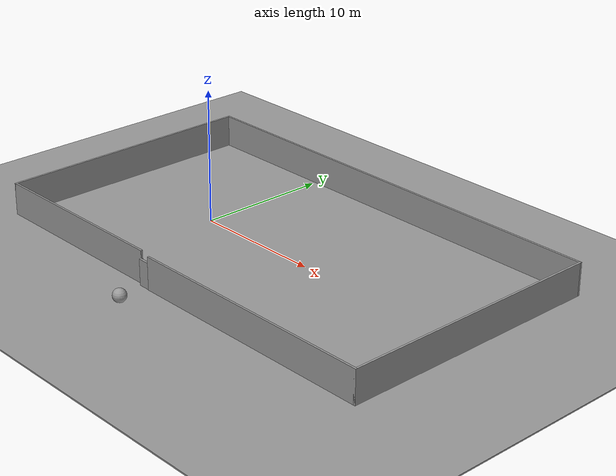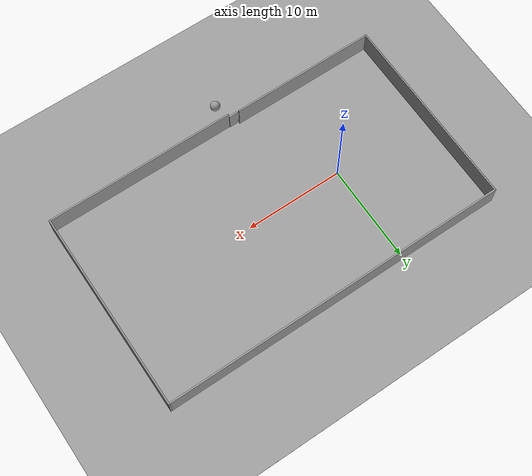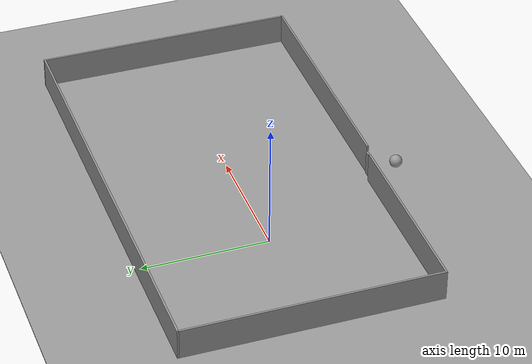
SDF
<sdf version="1.6">
 <world name="default">
  <light name="sun" type="directional">
   <pose>0 0 10 0 -0 0</pose>
   <diffuse>0.8 0.8 0.8 1</diffuse>
   <specular>0.2 0.2 0.2 1</specular>
   <attenuation>
    <range>1000</range>
    <constant>0.9</constant>
    <linear>0.01</linear>
    <quadratic>0.001</quadratic>
   </attenuation>
   <direction>-0.5 0.1 -0.9</direction>
  </light>
  <model name="ground_plane">
   <static>1</static>
   <link name="link">
    <collision name="collision">
     <geometry><plane><normal>0 0 1</normal><size>100 100</size></plane></geometry>
     <surface>
      <contact><collide_bitmask>65535</collide_bitmask></contact>
      <friction><ode><mu>100</mu><mu2>50</mu2></ode></friction>
     </surface>
    </collision>
    <visual name="visual">
     <cast_shadows>0</cast_shadows>
     <geometry><plane><normal>0 0 1</normal><size>100 100</size></plane></geometry>
     <material>
      <script><uri>file://media/materials/scripts/gazebo.material</uri><name>Gazebo/Grey</name></script>
     </material>
    </visual>
   </link>
  </model>
  <gravity>0 0 -9.8</gravity>
  <magnetic_field>6e-06 2.3e-05 -4.2e-05</magnetic_field>
  <atmosphere type="adiabatic"/>
  <physics name="default_physics" default="0" type="ode">
   <max_step_size>0.001</max_step_size>
   <real_time_factor>1</real_time_factor>
   <real_time_update_rate>1000</real_time_update_rate>
  </physics>
  <scene><ambient>0.4 0.4 0.4 1</ambient><background>0.7 0.7 0.7 1</background><shadows>1</shadows></scene>
  <audio><device>default</device></audio>
  <spherical_coordinates>
   <surface_model>EARTH_WGS84</surface_model>
   <latitude_deg>0</latitude_deg>
   <longitude_deg>0</longitude_deg>
   <elevation>0</elevation>
   <heading_deg>0</heading_deg>
  </spherical_coordinates>
  <model name="ground_plane_0">
   <static>1</static>
   <link name="link">
    <collision name="collision">
     <geometry><plane><normal>0 0 1</normal><size>100 100</size></plane></geometry>
     <surface>
      <contact><collide_bitmask>65535</collide_bitmask></contact>
      <friction><ode><mu>100</mu><mu2>50</mu2></ode></friction>
     </surface>
    </collision>
    <visual name="visual">
     <cast_shadows>0</cast_shadows>
     <geometry><plane><normal>0 0 1</normal><size>100 100</size></plane></geometry>
     <material>
      <script><uri>file://media/materials/scripts/gazebo.material</uri><name>Gazebo/Grey</name></script>
     </material>
    </visual>
   </link>
   <pose>-3.1607 -1.66763 0 0 -0 0</pose>
  </model>
  <model name="gujarong">
   <pose>7.44002 0.191936 0 0 -0 0</pose>
   <link name="Door_1">
    <collision name="Door_1_Collision">
     <geometry><box><size>0.9 0.17 2</size></box></geometry>
     <pose>0 0 1 0 -0 0</pose>
    </collision>
    <visual name="Door_1_Visual">
     <pose>0 0 1 0 -0 0</pose>
     <geometry><box><size>0.9 0.17 2</size></box></geometry>
     <material>
      <script><uri>file://media/materials/scripts/gazebo.material</uri><name>Gazebo/Grey</name></script>
     </material>
    </visual>
    <pose>-2.22103 -10.1344 0 0 -0 0</pose>
   </link>
   <link name="Wall_0">
    <collision name="Wall_0_Collision">
     <geometry><box><size>19.5 0.15 2.5</size></box></geometry>
     <pose>0 0 1.25 0 -0 0</pose>
    </collision>
    <visual name="Wall_0_Visual">
     <pose>0 0 1.25 0 -0 0</pose>
     <geometry><box><size>19.5 0.15 2.5</size></box></geometry>
     <material>
      <script><uri>file://media/materials/scripts/gazebo.material</uri><name>Gazebo/Grey</name></script>
      <ambient>1 1 1 1</ambient>
     </material>
     <meta><layer>0</layer></meta>
    </visual>
    <pose>8 -10.175 0 0 -0 0</pose>
   </link>
   <link name="Wall_1">
    <collision name="Wall_1_Collision">
     <geometry><box><size>20.5 0.15 2.5</size></box></geometry>
     <pose>0 0 1.25 0 -0 0</pose>
    </collision>
    <visual name="Wall_1_Visual">
     <pose>0 0 1.25 0 -0 0</pose>
     <geometry><box><size>20.5 0.15 2.5</size></box></geometry>
     <material>
      <script><uri>file://media/materials/scripts/gazebo.material</uri><name>Gazebo/Grey</name></script>
      <ambient>1 1 1 1</ambient>
     </material>
     <meta><layer>0</layer></meta>
    </visual>
    <pose>17.675 0 0 0 -0 1.5708</pose>
   </link>
   <link name="Wall_2">
    <collision name="Wall_2_Collision">
     <geometry><box><size>35.5 0.15 2.5</size></box></geometry>
     <pose>0 0 1.25 0 -0 0</pose>
    </collision>
    <visual name="Wall_2_Visual">
     <pose>0 0 1.25 0 -0 0</pose>
     <geometry><box><size>35.5 0.15 2.5</size></box></geometry>
     <material>
      <script><uri>file://media/materials/scripts/gazebo.material</uri><name>Gazebo/Grey</name></script>
      <ambient>1 1 1 1</ambient>
     </material>
     <meta><layer>0</layer></meta>
    </visual>
    <pose>0 10.175 0 0 -0 3.14159</pose>
   </link>
   <link name="Wall_3">
    <collision name="Wall_3_Collision">
     <geometry><box><size>20.25 0.15 2.5</size></box></geometry>
     <pose>0 0 1.25 0 -0 0</pose>
    </collision>
    <visual name="Wall_3_Visual">
     <pose>0 0 1.25 0 -0 0</pose>
     <geometry><box><size>20.25 0.15 2.5</size></box></geometry>
     <material>
      <script><uri>file://media/materials/scripts/gazebo.material</uri><name>Gazebo/Grey</name></script>
      <ambient>1 1 1 1</ambient>
     </material>
     <meta><layer>0</layer></meta>
    </visual>
    <pose>-17.675 0.125 0 0 -0 -1.5708</pose>
   </link>
   <link name="Wall_4">
    <collision name="Wall_4_Collision">
     <geometry><box><size>15 0.15 2.5</size></box></geometry>
     <pose>0 0 1.25 0 -0 0</pose>
    </collision>
    <visual name="Wall_4_Visual">
     <pose>0 0 1.25 0 -0 0</pose>
     <geometry><box><size>15 0.15 2.5</size></box></geometry>
     <material>
      <script><uri>file://media/materials/scripts/gazebo.material</uri><name>Gazebo/Grey</name></script>
      <ambient>1 1 1 1</ambient>
     </material>
     <meta><layer>0</layer></meta>
    </visual>
    <pose>-10.25 -9.925 0 0 -0 0</pose>
   </link>
   <static>1</static>
  </model>
  <model name="unit_sphere">
   <pose>5.72568 -12.4097 0.49999 0 -0 0</pose>
   <link name="link">
    <inertial>
     <mass>1</mass>
     <inertia><ixx>0.1</ixx><ixy>0</ixy><ixz>0</ixz><iyy>0.1</iyy><iyz>0</iyz><izz>0.1</izz></inertia>
    </inertial>
    <collision name="collision"><geometry><sphere><radius>0.5</radius></sphere></geometry></collision>
    <visual name="visual">
     <geometry><sphere><radius>0.5</radius></sphere></geometry>
     <material>
      <script><name>Gazebo/Grey</name><uri>file://media/materials/scripts/gazebo.material</uri></script>
     </material>
    </visual>
   </link>
  </model>
 </world>
</sdf>
